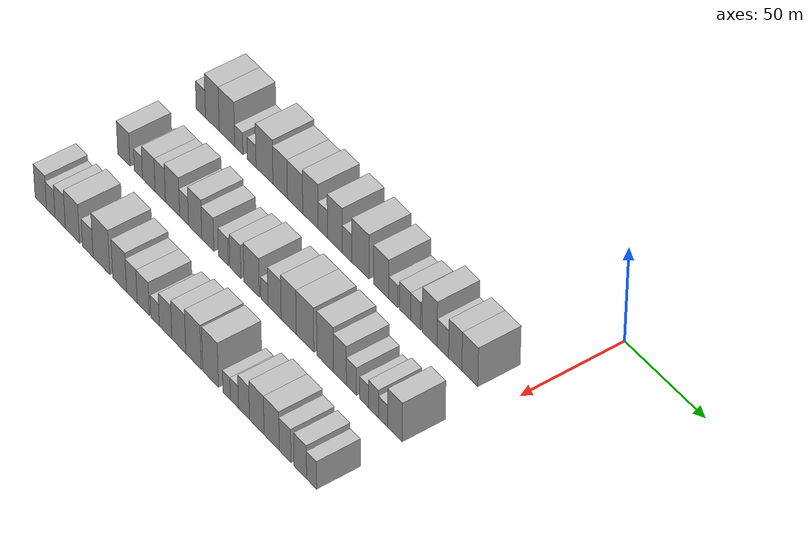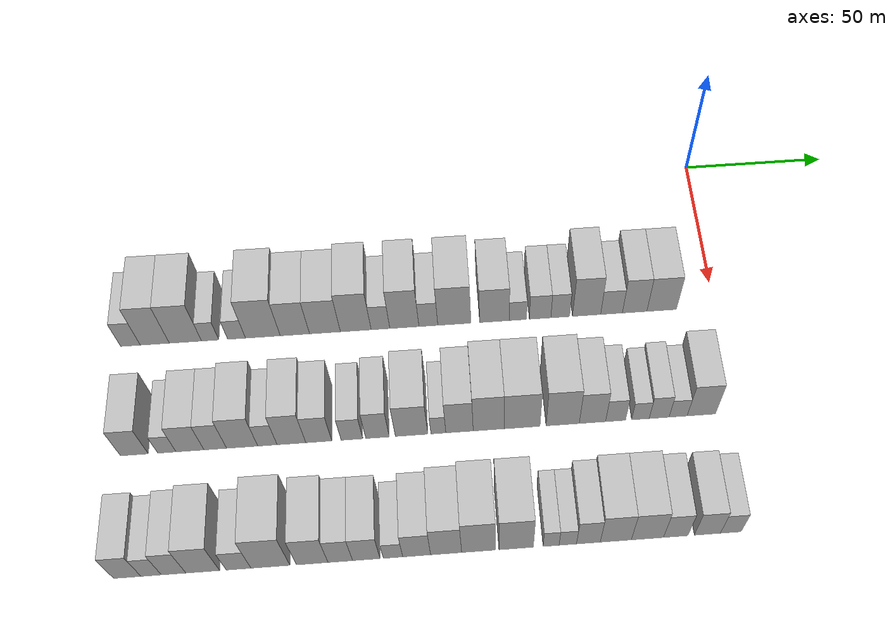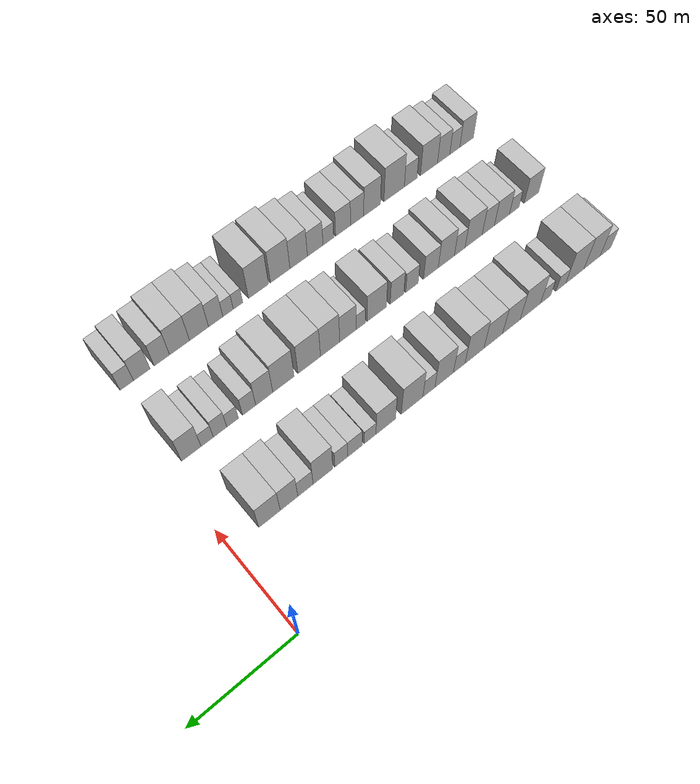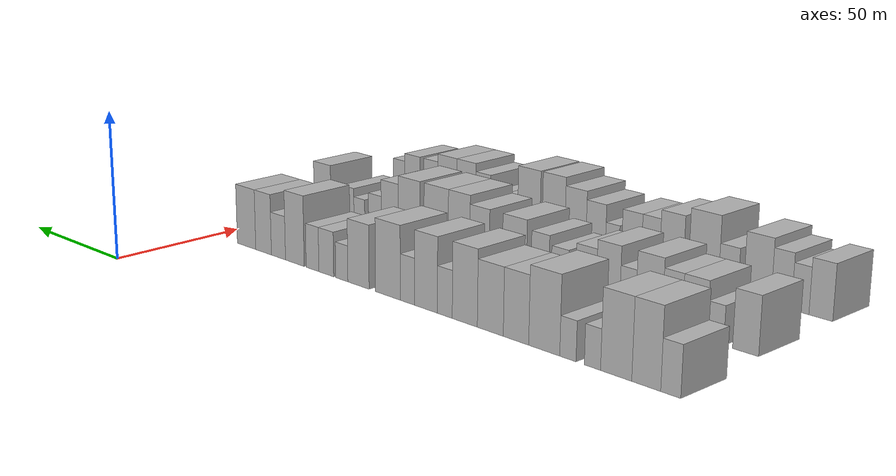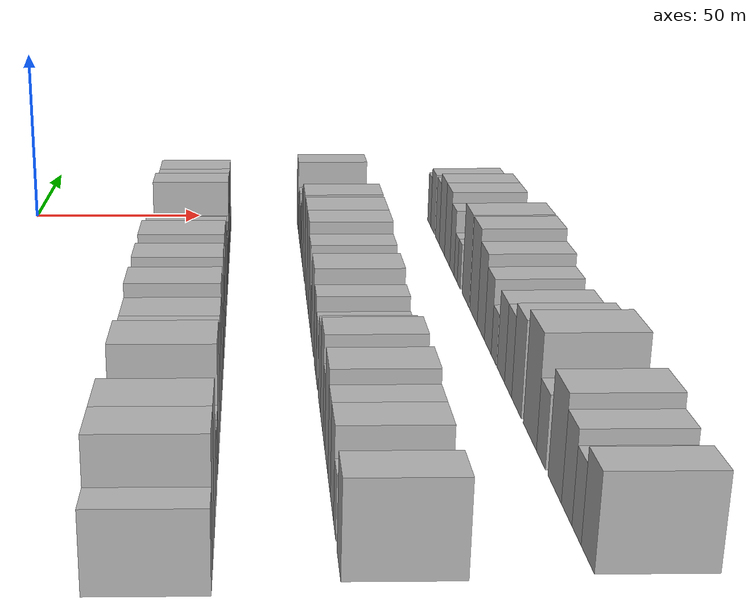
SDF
<sdf version="1.6">
 <world name="default">
  <model name="building_22">
   <static>1</static>
   <pose>50.0000 -199.2839 0 0.000000 0.000000 0.000000</pose>
   <link name="link">
    <pose>0 0 7.50 0 0 0</pose>
    <collision name="collision"><geometry><box><size>20.0000 6.5729 15.0000</size></box></geometry></collision>
    <visual name="visual">
     <cast_shadows>0</cast_shadows>
     <geometry><box><size>20.0000 6.5729 15.0000</size></box></geometry>
     <material>
      <script>
       <uri>model://HANNAS_wall/materials/scripts</uri>
       <uri>model://HANNAS_wall/materials/textures</uri>
       <name>vrc/HANNAS_wall</name>
      </script>
     </material>
    </visual>
   </link>
  </model>
  <model name="building_23">
   <static>1</static>
   <pose>50.0000 -191.1255 0 0.000000 0.000000 0.000000</pose>
   <link name="link">
    <pose>0 0 12.00 0 0 0</pose>
    <collision name="collision"><geometry><box><size>20.0000 9.7438 24.0000</size></box></geometry></collision>
    <visual name="visual">
     <cast_shadows>0</cast_shadows>
     <geometry><box><size>20.0000 9.7438 24.0000</size></box></geometry>
     <material>
      <script>
       <uri>model://HANNAS_wall/materials/scripts</uri>
       <uri>model://HANNAS_wall/materials/textures</uri>
       <name>vrc/HANNAS_wall</name>
      </script>
     </material>
    </visual>
   </link>
  </model>
  <model name="building_24">
   <static>1</static>
   <pose>50.0000 -180.8366 0 0.000000 0.000000 0.000000</pose>
   <link name="link">
    <pose>0 0 12.00 0 0 0</pose>
    <collision name="collision"><geometry><box><size>20.0000 10.8340 24.0000</size></box></geometry></collision>
    <visual name="visual">
     <cast_shadows>0</cast_shadows>
     <geometry><box><size>20.0000 10.8340 24.0000</size></box></geometry>
     <material>
      <script>
       <uri>model://HANNAS_wall/materials/scripts</uri>
       <uri>model://HANNAS_wall/materials/textures</uri>
       <name>vrc/HANNAS_wall</name>
      </script>
     </material>
    </visual>
   </link>
  </model>
  <model name="building_25">
   <static>1</static>
   <pose>50.0000 -172.5278 0 0.000000 0.000000 0.000000</pose>
   <link name="link">
    <pose>0 0 6.00 0 0 0</pose>
    <collision name="collision"><geometry><box><size>20.0000 5.7835 12.0000</size></box></geometry></collision>
    <visual name="visual">
     <cast_shadows>0</cast_shadows>
     <geometry><box><size>20.0000 5.7835 12.0000</size></box></geometry>
     <material>
      <script>
       <uri>model://HANNAS_wall/materials/scripts</uri>
       <uri>model://HANNAS_wall/materials/textures</uri>
       <name>vrc/HANNAS_wall</name>
      </script>
     </material>
    </visual>
   </link>
  </model>
  <model name="building_26">
   <static>1</static>
   <pose>50.0000 -163.6434 0 0.000000 0.000000 0.000000</pose>
   <link name="link">
    <pose>0 0 6.00 0 0 0</pose>
    <collision name="collision"><geometry><box><size>20.0000 5.9854 12.0000</size></box></geometry></collision>
    <visual name="visual">
     <cast_shadows>0</cast_shadows>
     <geometry><box><size>20.0000 5.9854 12.0000</size></box></geometry>
     <material>
      <script>
       <uri>model://HANNAS_wall/materials/scripts</uri>
       <uri>model://HANNAS_wall/materials/textures</uri>
       <name>vrc/HANNAS_wall</name>
      </script>
     </material>
    </visual>
   </link>
  </model>
  <model name="building_27">
   <static>1</static>
   <pose>50.0000 -154.7821 0 0.000000 0.000000 0.000000</pose>
   <link name="link">
    <pose>0 0 12.00 0 0 0</pose>
    <collision name="collision"><geometry><box><size>20.0000 11.7372 24.0000</size></box></geometry></collision>
    <visual name="visual">
     <cast_shadows>0</cast_shadows>
     <geometry><box><size>20.0000 11.7372 24.0000</size></box></geometry>
     <material>
      <script>
       <uri>model://HANNAS_wall/materials/scripts</uri>
       <uri>model://HANNAS_wall/materials/textures</uri>
       <name>vrc/HANNAS_wall</name>
      </script>
     </material>
    </visual>
   </link>
  </model>
  <model name="building_28">
   <static>1</static>
   <pose>50.0000 -143.9540 0 0.000000 0.000000 0.000000</pose>
   <link name="link">
    <pose>0 0 10.50 0 0 0</pose>
    <collision name="collision"><geometry><box><size>20.0000 9.9189 21.0000</size></box></geometry></collision>
    <visual name="visual">
     <cast_shadows>0</cast_shadows>
     <geometry><box><size>20.0000 9.9189 21.0000</size></box></geometry>
     <material>
      <script>
       <uri>model://HANNAS_wall/materials/scripts</uri>
       <uri>model://HANNAS_wall/materials/textures</uri>
       <name>vrc/HANNAS_wall</name>
      </script>
     </material>
    </visual>
   </link>
  </model>
  <model name="building_29">
   <static>1</static>
   <pose>50.0000 -133.7586 0 0.000000 0.000000 0.000000</pose>
   <link name="link">
    <pose>0 0 10.50 0 0 0</pose>
    <collision name="collision"><geometry><box><size>20.0000 10.4721 21.0000</size></box></geometry></collision>
    <visual name="visual">
     <cast_shadows>0</cast_shadows>
     <geometry><box><size>20.0000 10.4721 21.0000</size></box></geometry>
     <material>
      <script>
       <uri>model://HANNAS_wall/materials/scripts</uri>
       <uri>model://HANNAS_wall/materials/textures</uri>
       <name>vrc/HANNAS_wall</name>
      </script>
     </material>
    </visual>
   </link>
  </model>
  <model name="building_30">
   <static>1</static>
   <pose>50.0000 -123.3076 0 0.000000 0.000000 0.000000</pose>
   <link name="link">
    <pose>0 0 12.00 0 0 0</pose>
    <collision name="collision"><geometry><box><size>20.0000 10.4298 24.0000</size></box></geometry></collision>
    <visual name="visual">
     <cast_shadows>0</cast_shadows>
     <geometry><box><size>20.0000 10.4298 24.0000</size></box></geometry>
     <material>
      <script>
       <uri>model://HANNAS_wall/materials/scripts</uri>
       <uri>model://HANNAS_wall/materials/textures</uri>
       <name>vrc/HANNAS_wall</name>
      </script>
     </material>
    </visual>
   </link>
  </model>
  <model name="building_31">
   <static>1</static>
   <pose>50.0000 -114.9148 0 0.000000 0.000000 0.000000</pose>
   <link name="link">
    <pose>0 0 7.50 0 0 0</pose>
    <collision name="collision"><geometry><box><size>20.0000 6.3557 15.0000</size></box></geometry></collision>
    <visual name="visual">
     <cast_shadows>0</cast_shadows>
     <geometry><box><size>20.0000 6.3557 15.0000</size></box></geometry>
     <material>
      <script>
       <uri>model://HANNAS_wall/materials/scripts</uri>
       <uri>model://HANNAS_wall/materials/textures</uri>
       <name>vrc/HANNAS_wall</name>
      </script>
     </material>
    </visual>
   </link>
  </model>
  <model name="building_32">
   <static>1</static>
   <pose>50.0000 -106.7692 0 0.000000 0.000000 0.000000</pose>
   <link name="link">
    <pose>0 0 12.00 0 0 0</pose>
    <collision name="collision"><geometry><box><size>20.0000 9.9356 24.0000</size></box></geometry></collision>
    <visual name="visual">
     <cast_shadows>0</cast_shadows>
     <geometry><box><size>20.0000 9.9356 24.0000</size></box></geometry>
     <material>
      <script>
       <uri>model://HANNAS_wall/materials/scripts</uri>
       <uri>model://HANNAS_wall/materials/textures</uri>
       <name>vrc/HANNAS_wall</name>
      </script>
     </material>
    </visual>
   </link>
  </model>
  <model name="building_33">
   <static>1</static>
   <pose>50.0000 -98.5830 0 0.000000 0.000000 0.000000</pose>
   <link name="link">
    <pose>0 0 7.50 0 0 0</pose>
    <collision name="collision"><geometry><box><size>20.0000 6.4369 15.0000</size></box></geometry></collision>
    <visual name="visual">
     <cast_shadows>0</cast_shadows>
     <geometry><box><size>20.0000 6.4369 15.0000</size></box></geometry>
     <material>
      <script>
       <uri>model://HANNAS_wall/materials/scripts</uri>
       <uri>model://HANNAS_wall/materials/textures</uri>
       <name>vrc/HANNAS_wall</name>
      </script>
     </material>
    </visual>
   </link>
  </model>
  <model name="building_34">
   <static>1</static>
   <pose>50.0000 -89.6966 0 0.000000 0.000000 0.000000</pose>
   <link name="link">
    <pose>0 0 12.00 0 0 0</pose>
    <collision name="collision"><geometry><box><size>20.0000 11.3359 24.0000</size></box></geometry></collision>
    <visual name="visual">
     <cast_shadows>0</cast_shadows>
     <geometry><box><size>20.0000 11.3359 24.0000</size></box></geometry>
     <material>
      <script>
       <uri>model://HANNAS_wall/materials/scripts</uri>
       <uri>model://HANNAS_wall/materials/textures</uri>
       <name>vrc/HANNAS_wall</name>
      </script>
     </material>
    </visual>
   </link>
  </model>
  <model name="building_35">
   <static>1</static>
   <pose>50.0000 -75.9562 0 0.000000 0.000000 0.000000</pose>
   <link name="link">
    <pose>0 0 10.50 0 0 0</pose>
    <collision name="collision"><geometry><box><size>20.0000 10.1448 21.0000</size></box></geometry></collision>
    <visual name="visual">
     <cast_shadows>0</cast_shadows>
     <geometry><box><size>20.0000 10.1448 21.0000</size></box></geometry>
     <material>
      <script>
       <uri>model://HANNAS_wall/materials/scripts</uri>
       <uri>model://HANNAS_wall/materials/textures</uri>
       <name>vrc/HANNAS_wall</name>
      </script>
     </material>
    </visual>
   </link>
  </model>
  <model name="building_36">
   <static>1</static>
   <pose>50.0000 -67.9341 0 0.000000 0.000000 0.000000</pose>
   <link name="link">
    <pose>0 0 6.00 0 0 0</pose>
    <collision name="collision"><geometry><box><size>20.0000 5.8994 12.0000</size></box></geometry></collision>
    <visual name="visual">
     <cast_shadows>0</cast_shadows>
     <geometry><box><size>20.0000 5.8994 12.0000</size></box></geometry>
     <material>
      <script>
       <uri>model://HANNAS_wall/materials/scripts</uri>
       <uri>model://HANNAS_wall/materials/textures</uri>
       <name>vrc/HANNAS_wall</name>
      </script>
     </material>
    </visual>
   </link>
  </model>
  <model name="building_37">
   <static>1</static>
   <pose>50.0000 -60.2891 0 0.000000 0.000000 0.000000</pose>
   <link name="link">
    <pose>0 0 7.50 0 0 0</pose>
    <collision name="collision"><geometry><box><size>20.0000 7.3907 15.0000</size></box></geometry></collision>
    <visual name="visual">
     <cast_shadows>0</cast_shadows>
     <geometry><box><size>20.0000 7.3907 15.0000</size></box></geometry>
     <material>
      <script>
       <uri>model://HANNAS_wall/materials/scripts</uri>
       <uri>model://HANNAS_wall/materials/textures</uri>
       <name>vrc/HANNAS_wall</name>
      </script>
     </material>
    </visual>
   </link>
  </model>
  <model name="building_38">
   <static>1</static>
   <pose>50.0000 -53.3699 0 0.000000 0.000000 0.000000</pose>
   <link name="link">
    <pose>0 0 7.50 0 0 0</pose>
    <collision name="collision"><geometry><box><size>20.0000 6.4477 15.0000</size></box></geometry></collision>
    <visual name="visual">
     <cast_shadows>0</cast_shadows>
     <geometry><box><size>20.0000 6.4477 15.0000</size></box></geometry>
     <material>
      <script>
       <uri>model://HANNAS_wall/materials/scripts</uri>
       <uri>model://HANNAS_wall/materials/textures</uri>
       <name>vrc/HANNAS_wall</name>
      </script>
     </material>
    </visual>
   </link>
  </model>
  <model name="building_39">
   <static>1</static>
   <pose>50.0000 -44.2829 0 0.000000 0.000000 0.000000</pose>
   <link name="link">
    <pose>0 0 12.00 0 0 0</pose>
    <collision name="collision"><geometry><box><size>20.0000 9.7263 24.0000</size></box></geometry></collision>
    <visual name="visual">
     <cast_shadows>0</cast_shadows>
     <geometry><box><size>20.0000 9.7263 24.0000</size></box></geometry>
     <material>
      <script>
       <uri>model://HANNAS_wall/materials/scripts</uri>
       <uri>model://HANNAS_wall/materials/textures</uri>
       <name>vrc/HANNAS_wall</name>
      </script>
     </material>
    </visual>
   </link>
  </model>
  <model name="building_40">
   <static>1</static>
   <pose>50.0000 -35.6716 0 0.000000 0.000000 0.000000</pose>
   <link name="link">
    <pose>0 0 7.50 0 0 0</pose>
    <collision name="collision"><geometry><box><size>20.0000 7.4963 15.0000</size></box></geometry></collision>
    <visual name="visual">
     <cast_shadows>0</cast_shadows>
     <geometry><box><size>20.0000 7.4963 15.0000</size></box></geometry>
     <material>
      <script>
       <uri>model://HANNAS_wall/materials/scripts</uri>
       <uri>model://HANNAS_wall/materials/textures</uri>
       <name>vrc/HANNAS_wall</name>
      </script>
     </material>
    </visual>
   </link>
  </model>
  <model name="building_41">
   <static>1</static>
   <pose>50.0000 -27.6759 0 0.000000 0.000000 0.000000</pose>
   <link name="link">
    <pose>0 0 10.50 0 0 0</pose>
    <collision name="collision"><geometry><box><size>20.0000 8.4952 21.0000</size></box></geometry></collision>
    <visual name="visual">
     <cast_shadows>0</cast_shadows>
     <geometry><box><size>20.0000 8.4952 21.0000</size></box></geometry>
     <material>
      <script>
       <uri>model://HANNAS_wall/materials/scripts</uri>
       <uri>model://HANNAS_wall/materials/textures</uri>
       <name>vrc/HANNAS_wall</name>
      </script>
     </material>
    </visual>
   </link>
  </model>
  <model name="building_42">
   <static>1</static>
   <pose>50.0000 -18.3086 0 0.000000 0.000000 0.000000</pose>
   <link name="link">
    <pose>0 0 10.50 0 0 0</pose>
    <collision name="collision"><geometry><box><size>20.0000 10.2393 21.0000</size></box></geometry></collision>
    <visual name="visual">
     <cast_shadows>0</cast_shadows>
     <geometry><box><size>20.0000 10.2393 21.0000</size></box></geometry>
     <material>
      <script>
       <uri>model://HANNAS_wall/materials/scripts</uri>
       <uri>model://HANNAS_wall/materials/textures</uri>
       <name>vrc/HANNAS_wall</name>
      </script>
     </material>
    </visual>
   </link>
  </model>
  <model name="building_110">
   <static>1</static>
   <pose>90.0000 -194.5441 0 0.000000 0.000000 0.000000</pose>
   <link name="link">
    <pose>0 0 9.00 0 0 0</pose>
    <collision name="collision"><geometry><box><size>20.0000 8.8188 18.0000</size></box></geometry></collision>
    <visual name="visual">
     <cast_shadows>0</cast_shadows>
     <geometry><box><size>20.0000 8.8188 18.0000</size></box></geometry>
     <material>
      <script>
       <uri>model://HANNAS_wall/materials/scripts</uri>
       <uri>model://HANNAS_wall/materials/textures</uri>
       <name>vrc/HANNAS_wall</name>
      </script>
     </material>
    </visual>
   </link>
  </model>
  <model name="building_111">
   <static>1</static>
   <pose>90.0000 -184.2257 0 0.000000 0.000000 0.000000</pose>
   <link name="link">
    <pose>0 0 6.00 0 0 0</pose>
    <collision name="collision"><geometry><box><size>20.0000 5.8180 12.0000</size></box></geometry></collision>
    <visual name="visual">
     <cast_shadows>0</cast_shadows>
     <geometry><box><size>20.0000 5.8180 12.0000</size></box></geometry>
     <material>
      <script>
       <uri>model://HANNAS_wall/materials/scripts</uri>
       <uri>model://HANNAS_wall/materials/textures</uri>
       <name>vrc/HANNAS_wall</name>
      </script>
     </material>
    </visual>
   </link>
  </model>
  <model name="building_112">
   <static>1</static>
   <pose>90.0000 -176.8613 0 0.000000 0.000000 0.000000</pose>
   <link name="link">
    <pose>0 0 9.00 0 0 0</pose>
    <collision name="collision"><geometry><box><size>20.0000 8.9107 18.0000</size></box></geometry></collision>
    <visual name="visual">
     <cast_shadows>0</cast_shadows>
     <geometry><box><size>20.0000 8.9107 18.0000</size></box></geometry>
     <material>
      <script>
       <uri>model://HANNAS_wall/materials/scripts</uri>
       <uri>model://HANNAS_wall/materials/textures</uri>
       <name>vrc/HANNAS_wall</name>
      </script>
     </material>
    </visual>
   </link>
  </model>
  <model name="building_113">
   <static>1</static>
   <pose>90.0000 -168.7954 0 0.000000 0.000000 0.000000</pose>
   <link name="link">
    <pose>0 0 9.00 0 0 0</pose>
    <collision name="collision"><geometry><box><size>20.0000 7.2212 18.0000</size></box></geometry></collision>
    <visual name="visual">
     <cast_shadows>0</cast_shadows>
     <geometry><box><size>20.0000 7.2212 18.0000</size></box></geometry>
     <material>
      <script>
       <uri>model://HANNAS_wall/materials/scripts</uri>
       <uri>model://HANNAS_wall/materials/textures</uri>
       <name>vrc/HANNAS_wall</name>
      </script>
     </material>
    </visual>
   </link>
  </model>
  <model name="building_114">
   <static>1</static>
   <pose>90.0000 -160.2022 0 0.000000 0.000000 0.000000</pose>
   <link name="link">
    <pose>0 0 10.50 0 0 0</pose>
    <collision name="collision"><geometry><box><size>20.0000 9.9651 21.0000</size></box></geometry></collision>
    <visual name="visual">
     <cast_shadows>0</cast_shadows>
     <geometry><box><size>20.0000 9.9651 21.0000</size></box></geometry>
     <material>
      <script>
       <uri>model://HANNAS_wall/materials/scripts</uri>
       <uri>model://HANNAS_wall/materials/textures</uri>
       <name>vrc/HANNAS_wall</name>
      </script>
     </material>
    </visual>
   </link>
  </model>
  <model name="building_115">
   <static>1</static>
   <pose>90.0000 -152.1358 0 0.000000 0.000000 0.000000</pose>
   <link name="link">
    <pose>0 0 7.50 0 0 0</pose>
    <collision name="collision"><geometry><box><size>20.0000 6.1677 15.0000</size></box></geometry></collision>
    <visual name="visual">
     <cast_shadows>0</cast_shadows>
     <geometry><box><size>20.0000 6.1677 15.0000</size></box></geometry>
     <material>
      <script>
       <uri>model://HANNAS_wall/materials/scripts</uri>
       <uri>model://HANNAS_wall/materials/textures</uri>
       <name>vrc/HANNAS_wall</name>
      </script>
     </material>
    </visual>
   </link>
  </model>
  <model name="building_116">
   <static>1</static>
   <pose>90.0000 -144.4490 0 0.000000 0.000000 0.000000</pose>
   <link name="link">
    <pose>0 0 10.50 0 0 0</pose>
    <collision name="collision"><geometry><box><size>20.0000 9.2059 21.0000</size></box></geometry></collision>
    <visual name="visual">
     <cast_shadows>0</cast_shadows>
     <geometry><box><size>20.0000 9.2059 21.0000</size></box></geometry>
     <material>
      <script>
       <uri>model://HANNAS_wall/materials/scripts</uri>
       <uri>model://HANNAS_wall/materials/textures</uri>
       <name>vrc/HANNAS_wall</name>
      </script>
     </material>
    </visual>
   </link>
  </model>
  <model name="building_117">
   <static>1</static>
   <pose>90.0000 -135.6696 0 0.000000 0.000000 0.000000</pose>
   <link name="link">
    <pose>0 0 9.00 0 0 0</pose>
    <collision name="collision"><geometry><box><size>20.0000 8.3528 18.0000</size></box></geometry></collision>
    <visual name="visual">
     <cast_shadows>0</cast_shadows>
     <geometry><box><size>20.0000 8.3528 18.0000</size></box></geometry>
     <material>
      <script>
       <uri>model://HANNAS_wall/materials/scripts</uri>
       <uri>model://HANNAS_wall/materials/textures</uri>
       <name>vrc/HANNAS_wall</name>
      </script>
     </material>
    </visual>
   </link>
  </model>
  <model name="building_118">
   <static>1</static>
   <pose>90.0000 -125.0224 0 0.000000 0.000000 0.000000</pose>
   <link name="link">
    <pose>0 0 7.50 0 0 0</pose>
    <collision name="collision"><geometry><box><size>20.0000 6.9416 15.0000</size></box></geometry></collision>
    <visual name="visual">
     <cast_shadows>0</cast_shadows>
     <geometry><box><size>20.0000 6.9416 15.0000</size></box></geometry>
     <material>
      <script>
       <uri>model://HANNAS_wall/materials/scripts</uri>
       <uri>model://HANNAS_wall/materials/textures</uri>
       <name>vrc/HANNAS_wall</name>
      </script>
     </material>
    </visual>
   </link>
  </model>
  <model name="building_119">
   <static>1</static>
   <pose>90.0000 -116.7841 0 0.000000 0.000000 0.000000</pose>
   <link name="link">
    <pose>0 0 9.00 0 0 0</pose>
    <collision name="collision"><geometry><box><size>20.0000 7.5350 18.0000</size></box></geometry></collision>
    <visual name="visual">
     <cast_shadows>0</cast_shadows>
     <geometry><box><size>20.0000 7.5350 18.0000</size></box></geometry>
     <material>
      <script>
       <uri>model://HANNAS_wall/materials/scripts</uri>
       <uri>model://HANNAS_wall/materials/textures</uri>
       <name>vrc/HANNAS_wall</name>
      </script>
     </material>
    </visual>
   </link>
  </model>
  <model name="building_120">
   <static>1</static>
   <pose>90.0000 -105.7751 0 0.000000 0.000000 0.000000</pose>
   <link name="link">
    <pose>0 0 10.50 0 0 0</pose>
    <collision name="collision"><geometry><box><size>20.0000 10.4830 21.0000</size></box></geometry></collision>
    <visual name="visual">
     <cast_shadows>0</cast_shadows>
     <geometry><box><size>20.0000 10.4830 21.0000</size></box></geometry>
     <material>
      <script>
       <uri>model://HANNAS_wall/materials/scripts</uri>
       <uri>model://HANNAS_wall/materials/textures</uri>
       <name>vrc/HANNAS_wall</name>
      </script>
     </material>
    </visual>
   </link>
  </model>
  <model name="building_121">
   <static>1</static>
   <pose>90.0000 -97.1252 0 0.000000 0.000000 0.000000</pose>
   <link name="link">
    <pose>0 0 6.00 0 0 0</pose>
    <collision name="collision"><geometry><box><size>20.0000 4.8168 12.0000</size></box></geometry></collision>
    <visual name="visual">
     <cast_shadows>0</cast_shadows>
     <geometry><box><size>20.0000 4.8168 12.0000</size></box></geometry>
     <material>
      <script>
       <uri>model://HANNAS_wall/materials/scripts</uri>
       <uri>model://HANNAS_wall/materials/textures</uri>
       <name>vrc/HANNAS_wall</name>
      </script>
     </material>
    </visual>
   </link>
  </model>
  <model name="building_122">
   <static>1</static>
   <pose>90.0000 -90.2846 0 0.000000 0.000000 0.000000</pose>
   <link name="link">
    <pose>0 0 10.50 0 0 0</pose>
    <collision name="collision"><geometry><box><size>20.0000 8.8644 21.0000</size></box></geometry></collision>
    <visual name="visual">
     <cast_shadows>0</cast_shadows>
     <geometry><box><size>20.0000 8.8644 21.0000</size></box></geometry>
     <material>
      <script>
       <uri>model://HANNAS_wall/materials/scripts</uri>
       <uri>model://HANNAS_wall/materials/textures</uri>
       <name>vrc/HANNAS_wall</name>
      </script>
     </material>
    </visual>
   </link>
  </model>
  <model name="building_123">
   <static>1</static>
   <pose>90.0000 -80.8224 0 0.000000 0.000000 0.000000</pose>
   <link name="link">
    <pose>0 0 12.00 0 0 0</pose>
    <collision name="collision"><geometry><box><size>20.0000 10.0600 24.0000</size></box></geometry></collision>
    <visual name="visual">
     <cast_shadows>0</cast_shadows>
     <geometry><box><size>20.0000 10.0600 24.0000</size></box></geometry>
     <material>
      <script>
       <uri>model://HANNAS_wall/materials/scripts</uri>
       <uri>model://HANNAS_wall/materials/textures</uri>
       <name>vrc/HANNAS_wall</name>
      </script>
     </material>
    </visual>
   </link>
  </model>
  <model name="building_124">
   <static>1</static>
   <pose>90.0000 -69.9684 0 0.000000 0.000000 0.000000</pose>
   <link name="link">
    <pose>0 0 12.00 0 0 0</pose>
    <collision name="collision"><geometry><box><size>20.0000 11.6479 24.0000</size></box></geometry></collision>
    <visual name="visual">
     <cast_shadows>0</cast_shadows>
     <geometry><box><size>20.0000 11.6479 24.0000</size></box></geometry>
     <material>
      <script>
       <uri>model://HANNAS_wall/materials/scripts</uri>
       <uri>model://HANNAS_wall/materials/textures</uri>
       <name>vrc/HANNAS_wall</name>
      </script>
     </material>
    </visual>
   </link>
  </model>
  <model name="building_125">
   <static>1</static>
   <pose>90.0000 -56.7337 0 0.000000 0.000000 0.000000</pose>
   <link name="link">
    <pose>0 0 12.00 0 0 0</pose>
    <collision name="collision"><geometry><box><size>20.0000 10.8215 24.0000</size></box></geometry></collision>
    <visual name="visual">
     <cast_shadows>0</cast_shadows>
     <geometry><box><size>20.0000 10.8215 24.0000</size></box></geometry>
     <material>
      <script>
       <uri>model://HANNAS_wall/materials/scripts</uri>
       <uri>model://HANNAS_wall/materials/textures</uri>
       <name>vrc/HANNAS_wall</name>
      </script>
     </material>
    </visual>
   </link>
  </model>
  <model name="building_126">
   <static>1</static>
   <pose>90.0000 -47.0268 0 0.000000 0.000000 0.000000</pose>
   <link name="link">
    <pose>0 0 10.50 0 0 0</pose>
    <collision name="collision"><geometry><box><size>20.0000 8.5922 21.0000</size></box></geometry></collision>
    <visual name="visual">
     <cast_shadows>0</cast_shadows>
     <geometry><box><size>20.0000 8.5922 21.0000</size></box></geometry>
     <material>
      <script>
       <uri>model://HANNAS_wall/materials/scripts</uri>
       <uri>model://HANNAS_wall/materials/textures</uri>
       <name>vrc/HANNAS_wall</name>
      </script>
     </material>
    </visual>
   </link>
  </model>
  <model name="building_127">
   <static>1</static>
   <pose>90.0000 -39.4480 0 0.000000 0.000000 0.000000</pose>
   <link name="link">
    <pose>0 0 7.50 0 0 0</pose>
    <collision name="collision"><geometry><box><size>20.0000 6.5654 15.0000</size></box></geometry></collision>
    <visual name="visual">
     <cast_shadows>0</cast_shadows>
     <geometry><box><size>20.0000 6.5654 15.0000</size></box></geometry>
     <material>
      <script>
       <uri>model://HANNAS_wall/materials/scripts</uri>
       <uri>model://HANNAS_wall/materials/textures</uri>
       <name>vrc/HANNAS_wall</name>
      </script>
     </material>
    </visual>
   </link>
  </model>
  <model name="building_128">
   <static>1</static>
   <pose>90.0000 -31.2909 0 0.000000 0.000000 0.000000</pose>
   <link name="link">
    <pose>0 0 6.00 0 0 0</pose>
    <collision name="collision"><geometry><box><size>20.0000 5.7488 12.0000</size></box></geometry></collision>
    <visual name="visual">
     <cast_shadows>0</cast_shadows>
     <geometry><box><size>20.0000 5.7488 12.0000</size></box></geometry>
     <material>
      <script>
       <uri>model://HANNAS_wall/materials/scripts</uri>
       <uri>model://HANNAS_wall/materials/textures</uri>
       <name>vrc/HANNAS_wall</name>
      </script>
     </material>
    </visual>
   </link>
  </model>
  <model name="building_129">
   <static>1</static>
   <pose>90.0000 -25.1430 0 0.000000 0.000000 0.000000</pose>
   <link name="link">
    <pose>0 0 7.50 0 0 0</pose>
    <collision name="collision"><geometry><box><size>20.0000 6.5471 15.0000</size></box></geometry></collision>
    <visual name="visual">
     <cast_shadows>0</cast_shadows>
     <geometry><box><size>20.0000 6.5471 15.0000</size></box></geometry>
     <material>
      <script>
       <uri>model://HANNAS_wall/materials/scripts</uri>
       <uri>model://HANNAS_wall/materials/textures</uri>
       <name>vrc/HANNAS_wall</name>
      </script>
     </material>
    </visual>
   </link>
  </model>
  <model name="building_130">
   <static>1</static>
   <pose>90.0000 -18.8965 0 0.000000 0.000000 0.000000</pose>
   <link name="link">
    <pose>0 0 6.00 0 0 0</pose>
    <collision name="collision"><geometry><box><size>20.0000 5.9459 12.0000</size></box></geometry></collision>
    <visual name="visual">
     <cast_shadows>0</cast_shadows>
     <geometry><box><size>20.0000 5.9459 12.0000</size></box></geometry>
     <material>
      <script>
       <uri>model://HANNAS_wall/materials/scripts</uri>
       <uri>model://HANNAS_wall/materials/textures</uri>
       <name>vrc/HANNAS_wall</name>
      </script>
     </material>
    </visual>
   </link>
  </model>
  <model name="building_131">
   <static>1</static>
   <pose>90.0000 -11.2605 0 0.000000 0.000000 0.000000</pose>
   <link name="link">
    <pose>0 0 10.50 0 0 0</pose>
    <collision name="collision"><geometry><box><size>20.0000 9.3262 21.0000</size></box></geometry></collision>
    <visual name="visual">
     <cast_shadows>0</cast_shadows>
     <geometry><box><size>20.0000 9.3262 21.0000</size></box></geometry>
     <material>
      <script>
       <uri>model://HANNAS_wall/materials/scripts</uri>
       <uri>model://HANNAS_wall/materials/textures</uri>
       <name>vrc/HANNAS_wall</name>
      </script>
     </material>
    </visual>
   </link>
  </model>
  <model name="building_195">
   <static>1</static>
   <pose>130.0000 -193.2113 0 0.000000 0.000000 0.000000</pose>
   <link name="link">
    <pose>0 0 9.00 0 0 0</pose>
    <collision name="collision"><geometry><box><size>20.0000 8.2028 18.0000</size></box></geometry></collision>
    <visual name="visual">
     <cast_shadows>0</cast_shadows>
     <geometry><box><size>20.0000 8.2028 18.0000</size></box></geometry>
     <material>
      <script>
       <uri>model://HANNAS_wall/materials/scripts</uri>
       <uri>model://HANNAS_wall/materials/textures</uri>
       <name>vrc/HANNAS_wall</name>
      </script>
     </material>
    </visual>
   </link>
  </model>
  <model name="building_196">
   <static>1</static>
   <pose>130.0000 -186.0539 0 0.000000 0.000000 0.000000</pose>
   <link name="link">
    <pose>0 0 7.50 0 0 0</pose>
    <collision name="collision"><geometry><box><size>20.0000 6.1120 15.0000</size></box></geometry></collision>
    <visual name="visual">
     <cast_shadows>0</cast_shadows>
     <geometry><box><size>20.0000 6.1120 15.0000</size></box></geometry>
     <material>
      <script>
       <uri>model://HANNAS_wall/materials/scripts</uri>
       <uri>model://HANNAS_wall/materials/textures</uri>
       <name>vrc/HANNAS_wall</name>
      </script>
     </material>
    </visual>
   </link>
  </model>
  <model name="building_197">
   <static>1</static>
   <pose>130.0000 -179.3196 0 0.000000 0.000000 0.000000</pose>
   <link name="link">
    <pose>0 0 9.00 0 0 0</pose>
    <collision name="collision"><geometry><box><size>20.0000 7.3566 18.0000</size></box></geometry></collision>
    <visual name="visual">
     <cast_shadows>0</cast_shadows>
     <geometry><box><size>20.0000 7.3566 18.0000</size></box></geometry>
     <material>
      <script>
       <uri>model://HANNAS_wall/materials/scripts</uri>
       <uri>model://HANNAS_wall/materials/textures</uri>
       <name>vrc/HANNAS_wall</name>
      </script>
     </material>
    </visual>
   </link>
  </model>
  <model name="building_198">
   <static>1</static>
   <pose>130.0000 -170.5698 0 0.000000 0.000000 0.000000</pose>
   <link name="link">
    <pose>0 0 10.50 0 0 0</pose>
    <collision name="collision"><geometry><box><size>20.0000 10.1429 21.0000</size></box></geometry></collision>
    <visual name="visual">
     <cast_shadows>0</cast_shadows>
     <geometry><box><size>20.0000 10.1429 21.0000</size></box></geometry>
     <material>
      <script>
       <uri>model://HANNAS_wall/materials/scripts</uri>
       <uri>model://HANNAS_wall/materials/textures</uri>
       <name>vrc/HANNAS_wall</name>
      </script>
     </material>
    </visual>
   </link>
  </model>
  <model name="building_199">
   <static>1</static>
   <pose>130.0000 -159.7648 0 0.000000 0.000000 0.000000</pose>
   <link name="link">
    <pose>0 0 7.50 0 0 0</pose>
    <collision name="collision"><geometry><box><size>20.0000 7.4672 15.0000</size></box></geometry></collision>
    <visual name="visual">
     <cast_shadows>0</cast_shadows>
     <geometry><box><size>20.0000 7.4672 15.0000</size></box></geometry>
     <material>
      <script>
       <uri>model://HANNAS_wall/materials/scripts</uri>
       <uri>model://HANNAS_wall/materials/textures</uri>
       <name>vrc/HANNAS_wall</name>
      </script>
     </material>
    </visual>
   </link>
  </model>
  <model name="building_200">
   <static>1</static>
   <pose>130.0000 -150.1439 0 0.000000 0.000000 0.000000</pose>
   <link name="link">
    <pose>0 0 12.00 0 0 0</pose>
    <collision name="collision"><geometry><box><size>20.0000 11.7746 24.0000</size></box></geometry></collision>
    <visual name="visual">
     <cast_shadows>0</cast_shadows>
     <geometry><box><size>20.0000 11.7746 24.0000</size></box></geometry>
     <material>
      <script>
       <uri>model://HANNAS_wall/materials/scripts</uri>
       <uri>model://HANNAS_wall/materials/textures</uri>
       <name>vrc/HANNAS_wall</name>
      </script>
     </material>
    </visual>
   </link>
  </model>
  <model name="building_201">
   <static>1</static>
   <pose>130.0000 -137.4809 0 0.000000 0.000000 0.000000</pose>
   <link name="link">
    <pose>0 0 10.50 0 0 0</pose>
    <collision name="collision"><geometry><box><size>20.0000 9.5515 21.0000</size></box></geometry></collision>
    <visual name="visual">
     <cast_shadows>0</cast_shadows>
     <geometry><box><size>20.0000 9.5515 21.0000</size></box></geometry>
     <material>
      <script>
       <uri>model://HANNAS_wall/materials/scripts</uri>
       <uri>model://HANNAS_wall/materials/textures</uri>
       <name>vrc/HANNAS_wall</name>
      </script>
     </material>
    </visual>
   </link>
  </model>
  <model name="building_202">
   <static>1</static>
   <pose>130.0000 -128.9759 0 0.000000 0.000000 0.000000</pose>
   <link name="link">
    <pose>0 0 9.00 0 0 0</pose>
    <collision name="collision"><geometry><box><size>20.0000 7.4583 18.0000</size></box></geometry></collision>
    <visual name="visual">
     <cast_shadows>0</cast_shadows>
     <geometry><box><size>20.0000 7.4583 18.0000</size></box></geometry>
     <material>
      <script>
       <uri>model://HANNAS_wall/materials/scripts</uri>
       <uri>model://HANNAS_wall/materials/textures</uri>
       <name>vrc/HANNAS_wall</name>
      </script>
     </material>
    </visual>
   </link>
  </model>
  <model name="building_203">
   <static>1</static>
   <pose>130.0000 -121.0709 0 0.000000 0.000000 0.000000</pose>
   <link name="link">
    <pose>0 0 9.00 0 0 0</pose>
    <collision name="collision"><geometry><box><size>20.0000 8.3518 18.0000</size></box></geometry></collision>
    <visual name="visual">
     <cast_shadows>0</cast_shadows>
     <geometry><box><size>20.0000 8.3518 18.0000</size></box></geometry>
     <material>
      <script>
       <uri>model://HANNAS_wall/materials/scripts</uri>
       <uri>model://HANNAS_wall/materials/textures</uri>
       <name>vrc/HANNAS_wall</name>
      </script>
     </material>
    </visual>
   </link>
  </model>
  <model name="building_204">
   <static>1</static>
   <pose>130.0000 -112.9335 0 0.000000 0.000000 0.000000</pose>
   <link name="link">
    <pose>0 0 6.00 0 0 0</pose>
    <collision name="collision"><geometry><box><size>20.0000 5.9229 12.0000</size></box></geometry></collision>
    <visual name="visual">
     <cast_shadows>0</cast_shadows>
     <geometry><box><size>20.0000 5.9229 12.0000</size></box></geometry>
     <material>
      <script>
       <uri>model://HANNAS_wall/materials/scripts</uri>
       <uri>model://HANNAS_wall/materials/textures</uri>
       <name>vrc/HANNAS_wall</name>
      </script>
     </material>
    </visual>
   </link>
  </model>
  <model name="building_205">
   <static>1</static>
   <pose>130.0000 -105.7158 0 0.000000 0.000000 0.000000</pose>
   <link name="link">
    <pose>0 0 9.00 0 0 0</pose>
    <collision name="collision"><geometry><box><size>20.0000 8.5125 18.0000</size></box></geometry></collision>
    <visual name="visual">
     <cast_shadows>0</cast_shadows>
     <geometry><box><size>20.0000 8.5125 18.0000</size></box></geometry>
     <material>
      <script>
       <uri>model://HANNAS_wall/materials/scripts</uri>
       <uri>model://HANNAS_wall/materials/textures</uri>
       <name>vrc/HANNAS_wall</name>
      </script>
     </material>
    </visual>
   </link>
  </model>
  <model name="building_206">
   <static>1</static>
   <pose>130.0000 -96.7175 0 0.000000 0.000000 0.000000</pose>
   <link name="link">
    <pose>0 0 10.50 0 0 0</pose>
    <collision name="collision"><geometry><box><size>20.0000 9.4842 21.0000</size></box></geometry></collision>
    <visual name="visual">
     <cast_shadows>0</cast_shadows>
     <geometry><box><size>20.0000 9.4842 21.0000</size></box></geometry>
     <material>
      <script>
       <uri>model://HANNAS_wall/materials/scripts</uri>
       <uri>model://HANNAS_wall/materials/textures</uri>
       <name>vrc/HANNAS_wall</name>
      </script>
     </material>
    </visual>
   </link>
  </model>
  <model name="building_207">
   <static>1</static>
   <pose>130.0000 -86.7580 0 0.000000 0.000000 0.000000</pose>
   <link name="link">
    <pose>0 0 12.00 0 0 0</pose>
    <collision name="collision"><geometry><box><size>20.0000 10.4348 24.0000</size></box></geometry></collision>
    <visual name="visual">
     <cast_shadows>0</cast_shadows>
     <geometry><box><size>20.0000 10.4348 24.0000</size></box></geometry>
     <material>
      <script>
       <uri>model://HANNAS_wall/materials/scripts</uri>
       <uri>model://HANNAS_wall/materials/textures</uri>
       <name>vrc/HANNAS_wall</name>
      </script>
     </material>
    </visual>
   </link>
  </model>
  <model name="building_208">
   <static>1</static>
   <pose>130.0000 -75.2584 0 0.000000 0.000000 0.000000</pose>
   <link name="link">
    <pose>0 0 12.00 0 0 0</pose>
    <collision name="collision"><geometry><box><size>20.0000 10.5644 24.0000</size></box></geometry></collision>
    <visual name="visual">
     <cast_shadows>0</cast_shadows>
     <geometry><box><size>20.0000 10.5644 24.0000</size></box></geometry>
     <material>
      <script>
       <uri>model://HANNAS_wall/materials/scripts</uri>
       <uri>model://HANNAS_wall/materials/textures</uri>
       <name>vrc/HANNAS_wall</name>
      </script>
     </material>
    </visual>
   </link>
  </model>
  <model name="building_209">
   <static>1</static>
   <pose>130.0000 -64.5202 0 0.000000 0.000000 0.000000</pose>
   <link name="link">
    <pose>0 0 6.00 0 0 0</pose>
    <collision name="collision"><geometry><box><size>20.0000 4.9120 12.0000</size></box></geometry></collision>
    <visual name="visual">
     <cast_shadows>0</cast_shadows>
     <geometry><box><size>20.0000 4.9120 12.0000</size></box></geometry>
     <material>
      <script>
       <uri>model://HANNAS_wall/materials/scripts</uri>
       <uri>model://HANNAS_wall/materials/textures</uri>
       <name>vrc/HANNAS_wall</name>
      </script>
     </material>
    </visual>
   </link>
  </model>
  <model name="building_210">
   <static>1</static>
   <pose>130.0000 -59.3816 0 0.000000 0.000000 0.000000</pose>
   <link name="link">
    <pose>0 0 6.00 0 0 0</pose>
    <collision name="collision"><geometry><box><size>20.0000 5.3651 12.0000</size></box></geometry></collision>
    <visual name="visual">
     <cast_shadows>0</cast_shadows>
     <geometry><box><size>20.0000 5.3651 12.0000</size></box></geometry>
     <material>
      <script>
       <uri>model://HANNAS_wall/materials/scripts</uri>
       <uri>model://HANNAS_wall/materials/textures</uri>
       <name>vrc/HANNAS_wall</name>
      </script>
     </material>
    </visual>
   </link>
  </model>
  <model name="building_211">
   <static>1</static>
   <pose>130.0000 -53.0359 0 0.000000 0.000000 0.000000</pose>
   <link name="link">
    <pose>0 0 9.00 0 0 0</pose>
    <collision name="collision"><geometry><box><size>20.0000 7.3263 18.0000</size></box></geometry></collision>
    <visual name="visual">
     <cast_shadows>0</cast_shadows>
     <geometry><box><size>20.0000 7.3263 18.0000</size></box></geometry>
     <material>
      <script>
       <uri>model://HANNAS_wall/materials/scripts</uri>
       <uri>model://HANNAS_wall/materials/textures</uri>
       <name>vrc/HANNAS_wall</name>
      </script>
     </material>
    </visual>
   </link>
  </model>
  <model name="building_212">
   <static>1</static>
   <pose>130.0000 -44.5471 0 0.000000 0.000000 0.000000</pose>
   <link name="link">
    <pose>0 0 10.50 0 0 0</pose>
    <collision name="collision"><geometry><box><size>20.0000 9.6514 21.0000</size></box></geometry></collision>
    <visual name="visual">
     <cast_shadows>0</cast_shadows>
     <geometry><box><size>20.0000 9.6514 21.0000</size></box></geometry>
     <material>
      <script>
       <uri>model://HANNAS_wall/materials/scripts</uri>
       <uri>model://HANNAS_wall/materials/textures</uri>
       <name>vrc/HANNAS_wall</name>
      </script>
     </material>
    </visual>
   </link>
  </model>
  <model name="building_213">
   <static>1</static>
   <pose>130.0000 -34.7323 0 0.000000 0.000000 0.000000</pose>
   <link name="link">
    <pose>0 0 10.50 0 0 0</pose>
    <collision name="collision"><geometry><box><size>20.0000 9.9782 21.0000</size></box></geometry></collision>
    <visual name="visual">
     <cast_shadows>0</cast_shadows>
     <geometry><box><size>20.0000 9.9782 21.0000</size></box></geometry>
     <material>
      <script>
       <uri>model://HANNAS_wall/materials/scripts</uri>
       <uri>model://HANNAS_wall/materials/textures</uri>
       <name>vrc/HANNAS_wall</name>
      </script>
     </material>
    </visual>
   </link>
  </model>
  <model name="building_214">
   <static>1</static>
   <pose>130.0000 -25.9407 0 0.000000 0.000000 0.000000</pose>
   <link name="link">
    <pose>0 0 9.00 0 0 0</pose>
    <collision name="collision"><geometry><box><size>20.0000 7.6050 18.0000</size></box></geometry></collision>
    <visual name="visual">
     <cast_shadows>0</cast_shadows>
     <geometry><box><size>20.0000 7.6050 18.0000</size></box></geometry>
     <material>
      <script>
       <uri>model://HANNAS_wall/materials/scripts</uri>
       <uri>model://HANNAS_wall/materials/textures</uri>
       <name>vrc/HANNAS_wall</name>
      </script>
     </material>
    </visual>
   </link>
  </model>
  <model name="building_215">
   <static>1</static>
   <pose>130.0000 -16.0772 0 0.000000 0.000000 0.000000</pose>
   <link name="link">
    <pose>0 0 9.00 0 0 0</pose>
    <collision name="collision"><geometry><box><size>20.0000 8.1220 18.0000</size></box></geometry></collision>
    <visual name="visual">
     <cast_shadows>0</cast_shadows>
     <geometry><box><size>20.0000 8.1220 18.0000</size></box></geometry>
     <material>
      <script>
       <uri>model://HANNAS_wall/materials/scripts</uri>
       <uri>model://HANNAS_wall/materials/textures</uri>
       <name>vrc/HANNAS_wall</name>
      </script>
     </material>
    </visual>
   </link>
  </model>
  <model name="building_216">
   <static>1</static>
   <pose>130.0000 -8.7767 0 0.000000 0.000000 0.000000</pose>
   <link name="link">
    <pose>0 0 7.50 0 0 0</pose>
    <collision name="collision"><geometry><box><size>20.0000 6.4790 15.0000</size></box></geometry></collision>
    <visual name="visual">
     <cast_shadows>0</cast_shadows>
     <geometry><box><size>20.0000 6.4790 15.0000</size></box></geometry>
     <material>
      <script>
       <uri>model://HANNAS_wall/materials/scripts</uri>
       <uri>model://HANNAS_wall/materials/textures</uri>
       <name>vrc/HANNAS_wall</name>
      </script>
     </material>
    </visual>
   </link>
  </model>
 </world>
</sdf>
